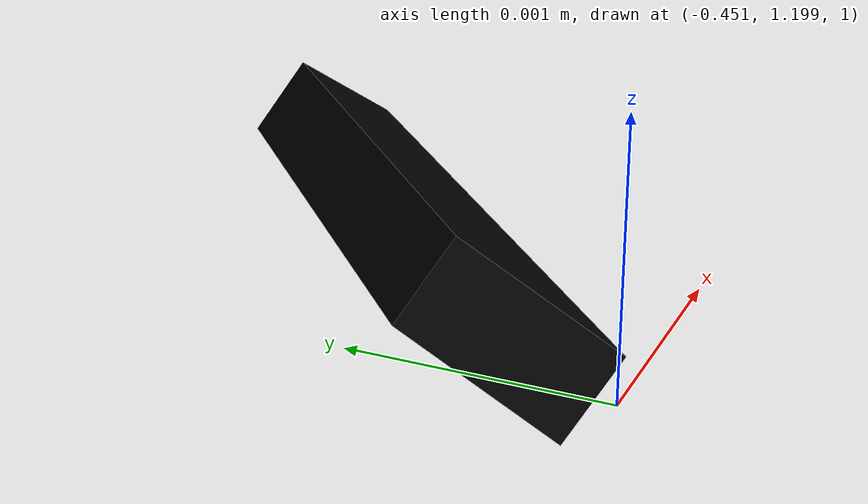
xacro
<?xml version="1.0" ?>
<robot xmlns:xacro="http://www.ros.org/wiki/xacro" name="camera">
  <xacro:property name="PI" value="3.14" />
  <xacro:property name="scalling" value="1.0" />
  <xacro:property name="scalling_marker" value="0.15" />

  <!-- Gazebo reference -->
  <xacro:property name="mu1" value="0.8" />
  <xacro:property name="mu2" value="0.8" />
  <xacro:property name="kp" value="1000000.0" />
  <xacro:property name="kd" value="1.0" />
  <xacro:property name="slip1" value="0.0" />
  <xacro:property name="slip2" value="0.0" />
  <xacro:property name="maxVel" value="0.0" />
  <xacro:property name="fdir1" value="0 0 1" />
  <xacro:property name="maxContacts" value="1" />
  <xacro:property name="minDepth" value="0.0001" />
  <xacro:property name="dampingFactor" value="0.01" />
  <xacro:property name="dampingFactorW" value="0.05" />

  <!-- Friction and damping -->
  <xacro:property name="damp_bar" value="0.2" />
  <xacro:property name="fric_bar" value="0.0" />
  <xacro:property name="damping" value="0.0" />
  <xacro:property name="friction" value="0.0" />

  <!-- bar size -->
  <xacro:property name="x_size" value="0.1" />
  <xacro:property name="y_size" value="0.1" />
  <xacro:property name="z_size" value="1.5" />
  <xacro:property name="bar_height" value="0.07" />

  <!-- Bar size -->
  <xacro:property name="L_bar" value="${x_size/2+0.01}" />
  <xacro:property name="w_bar" value="0.01" />
  <xacro:property name="h_bar" value="0.001" />

  <!-- Wheel size -->
  <xacro:property name="radius" value="0.05" />
  <xacro:property name="height" value="0.01" />

  <!-- Masses -->
  <xacro:property name="mass_bar" value="40.0" />
  <xacro:property name="wheel_mass" value="0.2" />
  <xacro:property name="mass_bar" value="0.05" />

  <!-- Inertia -->

  <xacro:property name="ixxw" value="${wheel_mass*(0.25)*radius*radius}" />
  <xacro:property name="iyyw" value="${wheel_mass*(0.25)*radius*radius}" />
  <xacro:property name="izzw" value="${wheel_mass*(0.5)*radius*radius}" />

  <xacro:property name="ixxb" value="${mass_bar*(1/12)*(y_size*y_size+z_size*z_size)}" />
  <xacro:property name="iyyb" value="${mass_bar*(1/12)*(x_size*x_size+z_size*z_size)}" />
  <xacro:property name="izzb" value="${mass_bar*(1/12)*(y_size*y_size+x_size*x_size)}" />

  <xacro:property name="ixxbar" value="0.1" />
  <xacro:property name="iyybar" value="0.1" />
  <xacro:property name="izzbar" value="0.1" />

  <material name="orange">
    <color rgba="${255/255} ${108/255} ${10/255} 1.0"/>
  </material>

  <material name="black">
    <color rgba="0 0 0.8 1"/>
  </material>

  <material name="blue">
    <color rgba="0 0 0.8 1"/>
  </material>
  <link name="map"/>
  <link name="world"/>
  <joint name="world_joint" type="fixed">
    <origin rpy="0 0 0" xyz="0 0 0"/>
     <parent link="world"/>
     <child link="map"/>
   </joint>

  <link name="bar_link">

    <inertial>
      <mass value="100"/>
      <inertia ixx="${ixxb}" ixy="0" ixz="0" iyy="${iyyb}" iyz="0" izz="${izzb}"/>
    </inertial>

  </link>

      <link name="camera_link">
        <inertial_sphere mass="0.01" diameter="0.07" />
        <visual>
          <origin xyz="0 0 0.0" rpy="0 0 0" />
          <geometry>
            <mesh filename="package://hector_sensors_description/meshes/kinect_camera/kinect_camera_simple.dae"/>
          </geometry>
        </visual>
        <collision>
          <geometry>
            <mesh filename="package://hector_sensors_description/meshes/kinect_camera/kinect_camera_simple.stl"/>
          </geometry>
        </collision>
      </link>

  <joint name="map_joint" type="fixed">
     <origin rpy="0 0 -0.83" xyz="-0.45 1.2 1.0"/> <!--0 1.0 ${z_size}-->
     <parent link="map"/>
     <child link="bar_link"/>
   </joint>

    <joint name="camera_joint" type="fixed">
        <origin xyz="0 0 0" rpy="0 0.65 0.0"/>
        <parent link="bar_link"/>
        <child link="camera_link"/>
      </joint>

<!-- KINECT -->
      <joint name="camera_depth_joint" type="fixed">
        <origin xyz="0.0 -0.02 0.0" rpy="0 0 0" />
        <parent link="camera_link" />
        <child link="camera_depth_frame"/>
      </joint>

      <link name="camera_depth_frame"/>

      <joint name="camera_depth_optical_joint" type="fixed">
        <origin xyz="0 0 0" rpy="${-PI/2} 0.0 ${-PI/2}" />
        <parent link="camera_depth_frame" />
        <child link="camera_depth_optical_frame"/>
      </joint>

      <link name="camera_depth_optical_frame"/>

      <joint name="camera_rgb_joint" type="fixed">
        <origin xyz="0.0 -0.0125 0.0" rpy="0 0 0" />
        <parent link="camera_link" />
        <child link="camera_rgb_frame"/>
      </joint>

      <link name="camera_rgb_frame"/>

      <joint name="camera_rgb_optical_joint" type="fixed">
        <origin xyz="0 0 0" rpy="${-PI/2} 0.0 ${-PI/2}" />
        <parent link="camera_rgb_frame" />
        <child link="camera_rgb_optical_frame"/>
      </joint>

      <link name="camera_rgb_optical_frame"/>

      <gazebo reference="camera_depth_frame">
        <sensor type="depth" name="camera">
          <update_rate>20</update_rate>
          <camera>
            <horizontal_fov>${60 * PI/180.0}</horizontal_fov> <!--Default 60-->
            <image>
              <format>R8G8B8</format>
              <width>3000</width>
              <height>2250</height>
            </image>
            <clip>
              <near>0.05</near>
              <far>10</far>
            </clip>
          </camera>

          <plugin name="camera_camera_controller" filename="libgazebo_ros_openni_kinect.so">
            <alwaysOn>true</alwaysOn>
            <updateRate>20</updateRate>
            <imageTopicName>outter_camera/rgb/image_raw</imageTopicName>
            <cameraInfoTopicName>outter_camera/rgb/camera_info</cameraInfoTopicName>
            <depthImageTopicName>outter_camera/depth/image_raw</depthImageTopicName>
            <depthImageCameraInfoTopicName>outter_camera/depth/camera_info</depthImageCameraInfoTopicName>
            <frameName>camera_depth_optical_frame</frameName>
            <distortion_k1>0.0</distortion_k1>
            <distortion_k2>0.0</distortion_k2>
            <distortion_k3>0.0</distortion_k3>
            <distortion_t1>0.0</distortion_t1>
            <distortion_t2>0.0</distortion_t2>
          </plugin>
        </sensor>
      </gazebo>
<!-- END Kinect -->
</robot>
